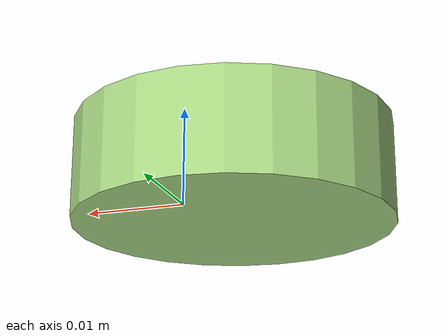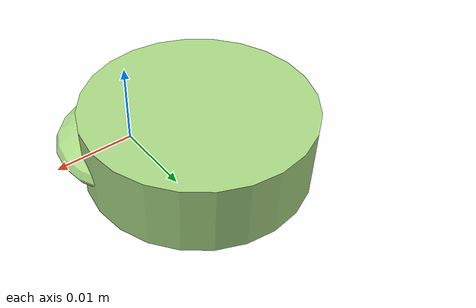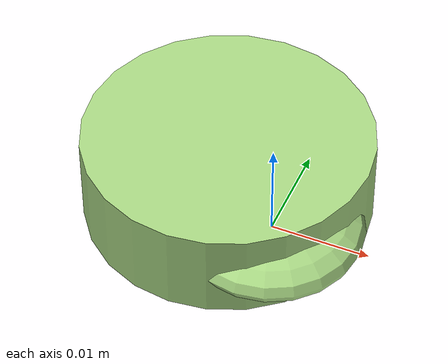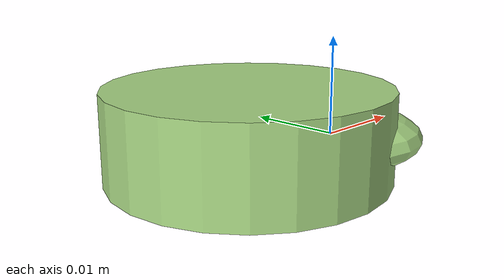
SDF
<?xml version="1.0" ?>
<!-- |    This document was autogenerated by xmacro from data/veggie_template/veggie_base.sdf.xacro  | -->
<!-- |    EDITING THIS FILE BY HAND IS NOT RECOMMENDED                                               | -->
<sdf version="1.8">
	<!-- Parameters -->
	<!-- Base -->
	<!-- Joint 0 -->
	<!-- Link 1 -->
	<!-- Joint 1 -->
	<!-- Link 2 -->
	<!-- Primitives -->
	<!-- All dimensions are half -->
	<!-- Object -->
	<model name="veggie">
		<!-- link0 -->
		<link name="link0">
			<inertial>
				<mass>0.0011232829836718065</mass>
				<inertia>
					<ixx>2.188971346203516e-08</ixx>
					<ixy>0</ixy>
					<ixz>0</ixz>
					<iyy>2.1148979120214426e-08</iyy>
					<iyz>0</iyz>
					<izz>3.867641197836104e-08</izz>
				</inertia>
			</inertial>
			<visual name="link0_visual">
				<pose>0 0 0 0 0 0</pose>
				<geometry>
					<ellipsoid>
						<radii>0.009188599816408953 0.00936629870873059 0.00311589068907626</radii>
					</ellipsoid>
				</geometry>
				<material>
					<ambient>0.659 0.839 0.514 1</ambient>
					<diffuse>0.659 0.839 0.514 1</diffuse>
					<specular>0 0 0 0</specular>
					<emissive>0 0 0 1</emissive>
				</material>
			</visual>
			<collision name="link0_collision">
				<pose>0 0 0 0 0 0 </pose>
				<geometry>
					<ellipsoid>
						<radii>0.009188599816408953 0.00936629870873059 0.00311589068907626</radii>
					</ellipsoid>
				</geometry>
			</collision>
		</link>
		<!-- link1 -->
		<joint name="joint0" type="fixed">
			<pose relative_to="link0">-0.006821833828575095 0.005176178898434699 0.0005645957165802745 0.0 0.0 0.0</pose>
			<parent>link0</parent>
			<child>link1</child>
		</joint>
		<link name="link1">
			<pose relative_to="joint0">0 0 0 0 0 0</pose>
			<inertial>
				<mass>0.006290949796562544</mass>
				<inertia>
					<ixx>3.8301546316655474e-07</ixx>
					<ixy>0</ixy>
					<ixz>0</ixz>
					<iyy>3.8301546316655474e-07</iyy>
					<iyz>0</iyz>
					<izz>6.746339889064069e-07</izz>
				</inertia>
			</inertial>
			<visual name="link1_visual">
				<pose>0 0 0 0 0 0</pose>
				<geometry>
					<cylinder>
						<radius>0.014645054661064801</radius>
						<length>0.009336483568008433</length>
					</cylinder>
				</geometry>
				<material>
					<ambient>0.659 0.839 0.514 1</ambient>
					<diffuse>0.659 0.839 0.514 1</diffuse>
					<specular>0 0 0 0</specular>
					<emissive>0 0 0 1</emissive>
				</material>
			</visual>
			<collision name="link1_collision">
				<pose>0 0 0 0 0 0 </pose>
				<geometry>
					<cylinder>
						<radius>0.014645054661064801</radius>
						<length>0.009336483568008433</length>
					</cylinder>
				</geometry>
			</collision>
		</link>
		<!-- link2 -->
	</model>
</sdf>
